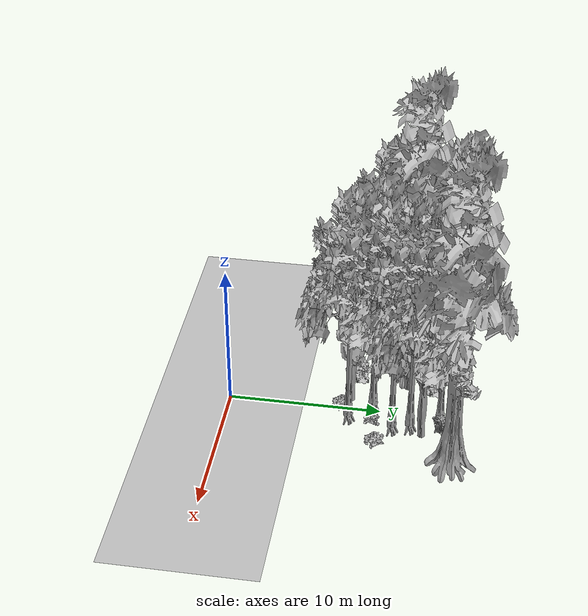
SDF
<sdf version="1.7">
 <world name="default">
  <model name="ground_plane">
   <static>1</static>
   <link name="link">
    <collision name="collision">
     <geometry><plane><normal>0 0 1</normal><size>100 100</size></plane></geometry>
     <surface><contact><ode><min_depth>0.01</min_depth><max_vel>0</max_vel></ode></contact></surface>
    </collision>
    <visual name="grass">
     <cast_shadows>0</cast_shadows>
     <geometry>
      <mesh>
       <scale>0.5814285714285714 0.18142857142857144 0.1</scale>
       <uri>file://grass_plane/meshes/grass_plane.dae</uri>
      </mesh>
     </geometry>
    </visual>
   </link>
  </model>
  <model name="Tree 17">
   <static>1</static>
   <pose>1.8637078458601835 12.813028883105133 0 1.57079 -0 0</pose>
   <link name="link">
    <collision name="collision">
     <geometry><mesh><scale>3.5 5 3.5</scale><uri>model://tree_2/meshes/tree_2.obj</uri></mesh></geometry>
    </collision>
    <visual name="visual">
     <geometry><mesh><scale>3.5 5 3.5</scale><uri>model://tree_2/meshes/tree_2.obj</uri></mesh></geometry>
    </visual>
   </link>
  </model>
  <model name="Tree 51">
   <static>1</static>
   <pose>-2.7148311823868596 11.498756158764426 0 1.57079 -0 0</pose>
   <link name="link">
    <collision name="collision">
     <geometry><mesh><scale>3.5 5 3.5</scale><uri>model://tree_2/meshes/tree_2.obj</uri></mesh></geometry>
    </collision>
    <visual name="visual">
     <geometry><mesh><scale>3.5 5 3.5</scale><uri>model://tree_2/meshes/tree_2.obj</uri></mesh></geometry>
    </visual>
   </link>
  </model>
  <model name="Tree 76">
   <static>1</static>
   <pose>-0.6667524814030585 9.434002586770365 0 1.57079 -0 0</pose>
   <link name="link">
    <collision name="collision">
     <geometry><mesh><scale>3.5 5 3.5</scale><uri>model://tree_9/meshes/tree_9.obj</uri></mesh></geometry>
    </collision>
    <visual name="visual">
     <geometry><mesh><scale>3.5 5 3.5</scale><uri>model://tree_9/meshes/tree_9.obj</uri></mesh></geometry>
    </visual>
   </link>
  </model>
  <model name="Tree 213">
   <static>1</static>
   <pose>-6.2349217593969115 12.640413551727448 0 1.57079 -0 0</pose>
   <link name="link">
    <collision name="collision">
     <geometry><mesh><scale>3.5 5 3.5</scale><uri>model://tree_2/meshes/tree_2.obj</uri></mesh></geometry>
    </collision>
    <visual name="visual">
     <geometry><mesh><scale>3.5 5 3.5</scale><uri>model://tree_2/meshes/tree_2.obj</uri></mesh></geometry>
    </visual>
   </link>
  </model>
  <model name="Tree 218">
   <static>1</static>
   <pose>4.327251048616375 14.885177378229503 0 1.57079 -0 0</pose>
   <link name="link">
    <collision name="collision">
     <geometry><mesh><scale>3.5 5 3.5</scale><uri>model://tree_4/meshes/tree_4.obj</uri></mesh></geometry>
    </collision>
    <visual name="visual">
     <geometry><mesh><scale>3.5 5 3.5</scale><uri>model://tree_4/meshes/tree_4.obj</uri></mesh></geometry>
    </visual>
   </link>
  </model>
  <model name="Tree 255">
   <static>1</static>
   <pose>-1.0226728114008452 7.945486675183162 0 1.57079 -0 0</pose>
   <link name="link">
    <collision name="collision">
     <geometry><mesh><scale>3.5 5 3.5</scale><uri>model://tree_2/meshes/tree_2.obj</uri></mesh></geometry>
    </collision>
    <visual name="visual">
     <geometry><mesh><scale>3.5 5 3.5</scale><uri>model://tree_2/meshes/tree_2.obj</uri></mesh></geometry>
    </visual>
   </link>
  </model>
  <model name="Tree 285">
   <static>1</static>
   <pose>0.900818049802524 12.013229391033686 0 1.57079 -0 0</pose>
   <link name="link">
    <collision name="collision">
     <geometry><mesh><scale>3.5 5 3.5</scale><uri>model://tree_9/meshes/tree_9.obj</uri></mesh></geometry>
    </collision>
    <visual name="visual">
     <geometry><mesh><scale>3.5 5 3.5</scale><uri>model://tree_9/meshes/tree_9.obj</uri></mesh></geometry>
    </visual>
   </link>
  </model>
  <model name="Tree 348">
   <static>1</static>
   <pose>1.19262215732482 10.861729583628929 0 1.57079 -0 0</pose>
   <link name="link">
    <collision name="collision">
     <geometry><mesh><scale>3.5 5 3.5</scale><uri>model://tree_9/meshes/tree_9.obj</uri></mesh></geometry>
    </collision>
    <visual name="visual">
     <geometry><mesh><scale>3.5 5 3.5</scale><uri>model://tree_9/meshes/tree_9.obj</uri></mesh></geometry>
    </visual>
   </link>
  </model>
  <model name="Tree 371">
   <static>1</static>
   <pose>-6.566321548600051 14.268667051373018 0 1.57079 -0 0</pose>
   <link name="link">
    <collision name="collision">
     <geometry><mesh><scale>3.5 5 3.5</scale><uri>model://tree_9/meshes/tree_9.obj</uri></mesh></geometry>
    </collision>
    <visual name="visual">
     <geometry><mesh><scale>3.5 5 3.5</scale><uri>model://tree_9/meshes/tree_9.obj</uri></mesh></geometry>
    </visual>
   </link>
  </model>
  <model name="Tree 379">
   <static>1</static>
   <pose>-4.292051691072778 11.62127381943031 0 1.57079 -0 0</pose>
   <link name="link">
    <collision name="collision">
     <geometry><mesh><scale>3.5 5 3.5</scale><uri>model://tree_4/meshes/tree_4.obj</uri></mesh></geometry>
    </collision>
    <visual name="visual">
     <geometry><mesh><scale>3.5 5 3.5</scale><uri>model://tree_4/meshes/tree_4.obj</uri></mesh></geometry>
    </visual>
   </link>
  </model>
  <model name="Tree 386">
   <static>1</static>
   <pose>0.5241961618986721 7.937110598571273 0 1.57079 -0 0</pose>
   <link name="link">
    <collision name="collision">
     <geometry><mesh><scale>3.5 5 3.5</scale><uri>model://tree_9/meshes/tree_9.obj</uri></mesh></geometry>
    </collision>
    <visual name="visual">
     <geometry><mesh><scale>3.5 5 3.5</scale><uri>model://tree_9/meshes/tree_9.obj</uri></mesh></geometry>
    </visual>
   </link>
  </model>
  <model name="Tree 405">
   <static>1</static>
   <pose>-5.452387794674479 9.812739372278038 0 1.57079 -0 0</pose>
   <link name="link">
    <collision name="collision">
     <geometry><mesh><scale>3.5 5 3.5</scale><uri>model://tree_9/meshes/tree_9.obj</uri></mesh></geometry>
    </collision>
    <visual name="visual">
     <geometry><mesh><scale>3.5 5 3.5</scale><uri>model://tree_9/meshes/tree_9.obj</uri></mesh></geometry>
    </visual>
   </link>
  </model>
  <model name="Tree 444">
   <static>1</static>
   <pose>0.3964760919780588 13.9134194571124 0 1.57079 -0 0</pose>
   <link name="link">
    <collision name="collision">
     <geometry><mesh><scale>3.5 5 3.5</scale><uri>model://tree_9/meshes/tree_9.obj</uri></mesh></geometry>
    </collision>
    <visual name="visual">
     <geometry><mesh><scale>3.5 5 3.5</scale><uri>model://tree_9/meshes/tree_9.obj</uri></mesh></geometry>
    </visual>
   </link>
  </model>
  <model name="Bush 7">
   <static>1</static>
   <pose>3.312273666276937 10.006645416508515 0 1.57079 -0 0</pose>
   <link name="link">
    <collision name="collision">
     <geometry><mesh><scale>2 2 2</scale><uri>model://bush_3/meshes/bush_3.obj</uri></mesh></geometry>
     <surface><contact><collide_without_contact>false</collide_without_contact></contact></surface>
    </collision>
    <visual name="visual">
     <geometry><mesh><scale>2 2 2</scale><uri>model://bush_3/meshes/bush_3.obj</uri></mesh></geometry>
    </visual>
   </link>
  </model>
  <model name="Bush 44">
   <static>1</static>
   <pose>0.024862551333910687 7.50214743066833 0 1.57079 -0 0</pose>
   <link name="link">
    <collision name="collision">
     <geometry><mesh><scale>2 2 2</scale><uri>model://bush_3/meshes/bush_3.obj</uri></mesh></geometry>
     <surface><contact><collide_without_contact>false</collide_without_contact></contact></surface>
    </collision>
    <visual name="visual">
     <geometry><mesh><scale>2 2 2</scale><uri>model://bush_3/meshes/bush_3.obj</uri></mesh></geometry>
    </visual>
   </link>
  </model>
  <model name="Bush 121">
   <static>1</static>
   <pose>-2.0258153992610843 13.092911152996777 0 1.57079 -0 0</pose>
   <link name="link">
    <collision name="collision">
     <geometry><mesh><scale>2 2 2</scale><uri>model://bush_1/meshes/bush_1.obj</uri></mesh></geometry>
     <surface><contact><collide_without_contact>false</collide_without_contact></contact></surface>
    </collision>
    <visual name="visual">
     <geometry><mesh><scale>2 2 2</scale><uri>model://bush_1/meshes/bush_1.obj</uri></mesh></geometry>
    </visual>
   </link>
  </model>
  <model name="Bush 130">
   <static>1</static>
   <pose>0.8132814083867075 9.51143887523385 0 1.57079 -0 0</pose>
   <link name="link">
    <collision name="collision">
     <geometry><mesh><scale>2 2 2</scale><uri>model://bush_2/meshes/bush_2.obj</uri></mesh></geometry>
     <surface><contact><collide_without_contact>false</collide_without_contact></contact></surface>
    </collision>
    <visual name="visual">
     <geometry><mesh><scale>2 2 2</scale><uri>model://bush_2/meshes/bush_2.obj</uri></mesh></geometry>
    </visual>
   </link>
  </model>
  <model name="Bush 133">
   <static>1</static>
   <pose>-5.385070538192615 10.477840895358874 0 1.57079 -0 0</pose>
   <link name="link">
    <collision name="collision">
     <geometry><mesh><scale>2 2 2</scale><uri>model://bush_5/meshes/bush_5.obj</uri></mesh></geometry>
     <surface><contact><collide_without_contact>false</collide_without_contact></contact></surface>
    </collision>
    <visual name="visual">
     <geometry><mesh><scale>2 2 2</scale><uri>model://bush_5/meshes/bush_5.obj</uri></mesh></geometry>
    </visual>
   </link>
  </model>
  <model name="Bush 137">
   <static>1</static>
   <pose>-2.7028935053584036 8.12829447272572 0 1.57079 -0 0</pose>
   <link name="link">
    <collision name="collision">
     <geometry><mesh><scale>2 2 2</scale><uri>model://bush_1/meshes/bush_1.obj</uri></mesh></geometry>
     <surface><contact><collide_without_contact>false</collide_without_contact></contact></surface>
    </collision>
    <visual name="visual">
     <geometry><mesh><scale>2 2 2</scale><uri>model://bush_1/meshes/bush_1.obj</uri></mesh></geometry>
    </visual>
   </link>
  </model>
  <model name="Bush 140">
   <static>1</static>
   <pose>-3.5791073616226043 13.801589433597826 0 1.57079 -0 0</pose>
   <link name="link">
    <collision name="collision">
     <geometry><mesh><scale>2 2 2</scale><uri>model://bush_4/meshes/bush_4.obj</uri></mesh></geometry>
     <surface><contact><collide_without_contact>false</collide_without_contact></contact></surface>
    </collision>
    <visual name="visual">
     <geometry><mesh><scale>2 2 2</scale><uri>model://bush_4/meshes/bush_4.obj</uri></mesh></geometry>
    </visual>
   </link>
  </model>
  <model name="Bush 203">
   <static>1</static>
   <pose>-3.9892457616468278 10.464560224839627 0 1.57079 -0 0</pose>
   <link name="link">
    <collision name="collision">
     <geometry><mesh><scale>2 2 2</scale><uri>model://bush_3/meshes/bush_3.obj</uri></mesh></geometry>
     <surface><contact><collide_without_contact>false</collide_without_contact></contact></surface>
    </collision>
    <visual name="visual">
     <geometry><mesh><scale>2 2 2</scale><uri>model://bush_3/meshes/bush_3.obj</uri></mesh></geometry>
    </visual>
   </link>
  </model>
  <model name="Bush 250">
   <static>1</static>
   <pose>1.385126640937159 13.962129645096898 0 1.57079 -0 0</pose>
   <link name="link">
    <collision name="collision">
     <geometry><mesh><scale>2 2 2</scale><uri>model://bush_4/meshes/bush_4.obj</uri></mesh></geometry>
     <surface><contact><collide_without_contact>false</collide_without_contact></contact></surface>
    </collision>
    <visual name="visual">
     <geometry><mesh><scale>2 2 2</scale><uri>model://bush_4/meshes/bush_4.obj</uri></mesh></geometry>
    </visual>
   </link>
  </model>
 </world>
</sdf>
